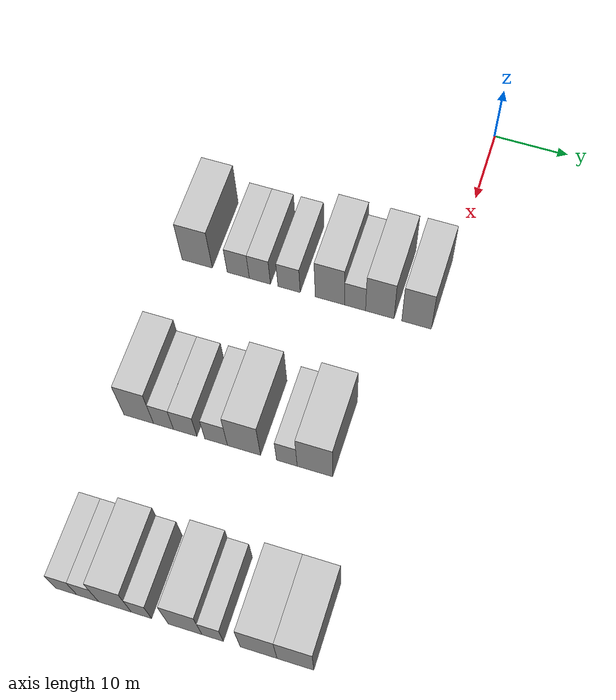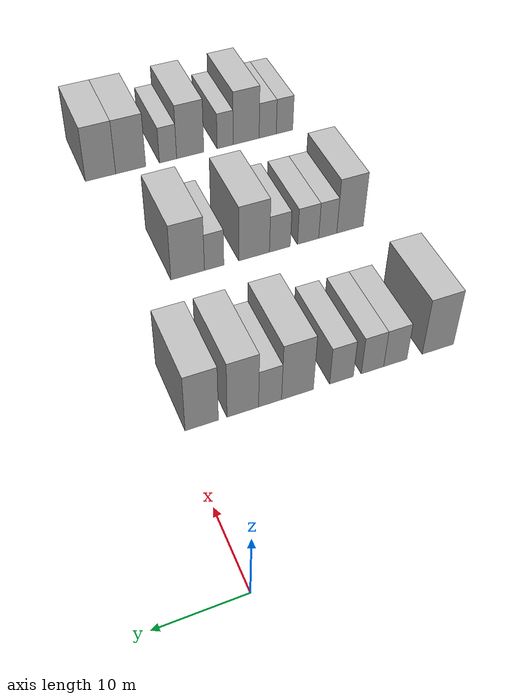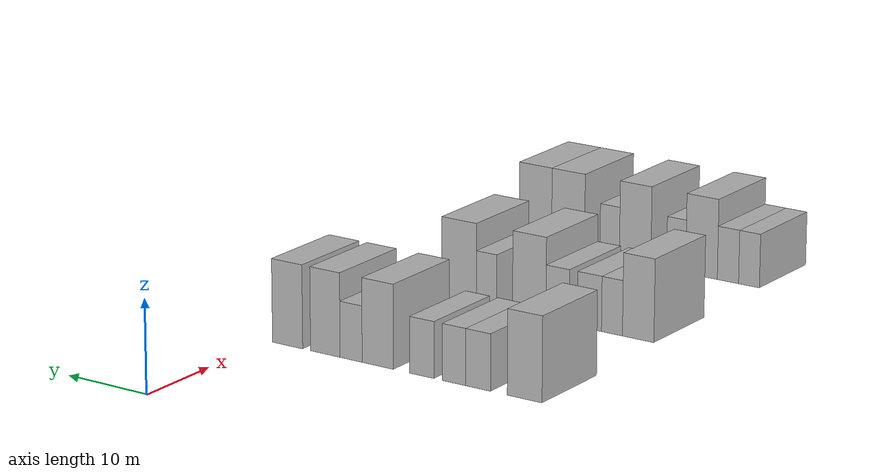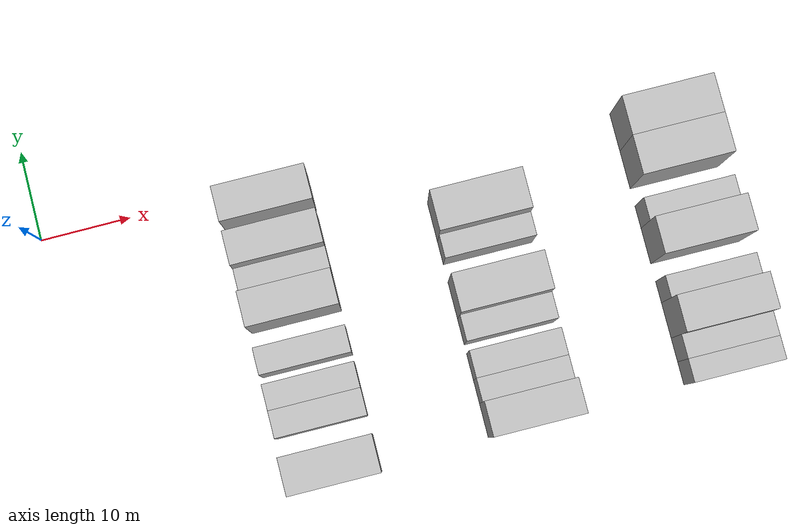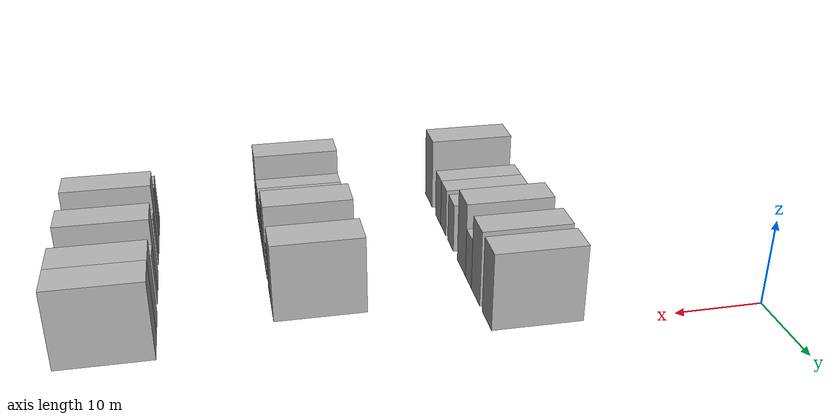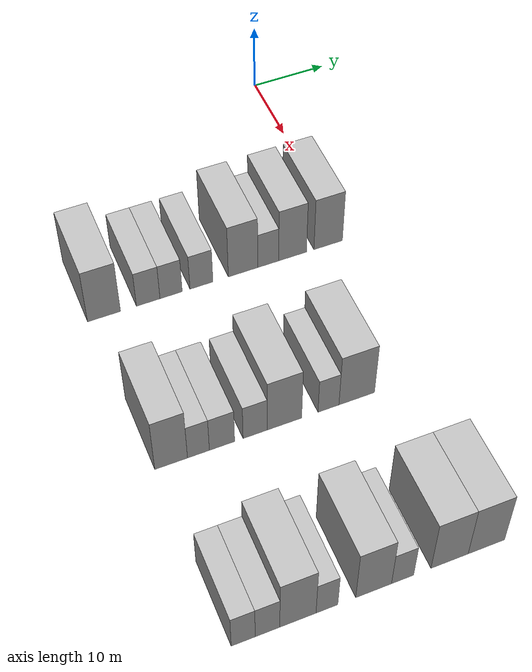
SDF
<sdf version="1.6">
 <world name="default">
  <model name="building_57">
   <static>1</static>
   <pose>25.0000 -31.4911 0 0.000000 0.000000 0.000000</pose>
   <link name="link">
    <pose>0 0 4.50 0 0 0</pose>
    <collision name="collision"><geometry><box><size>10.0000 4.1000 9.0000</size></box></geometry></collision>
    <visual name="visual">
     <cast_shadows>0</cast_shadows>
     <geometry><box><size>10.0000 4.1000 9.0000</size></box></geometry>
     <material>
      <script>
       <uri>model://HANNAS_wall/materials/scripts</uri>
       <uri>model://HANNAS_wall/materials/textures</uri>
       <name>vrc/HANNAS_wall</name>
      </script>
     </material>
    </visual>
   </link>
  </model>
  <model name="building_58">
   <static>1</static>
   <pose>25.0000 -25.9524 0 0.000000 0.000000 0.000000</pose>
   <link name="link">
    <pose>0 0 3.00 0 0 0</pose>
    <collision name="collision"><geometry><box><size>10.0000 2.9773 6.0000</size></box></geometry></collision>
    <visual name="visual">
     <cast_shadows>0</cast_shadows>
     <geometry><box><size>10.0000 2.9773 6.0000</size></box></geometry>
     <material>
      <script>
       <uri>model://HANNAS_wall/materials/scripts</uri>
       <uri>model://HANNAS_wall/materials/textures</uri>
       <name>vrc/HANNAS_wall</name>
      </script>
     </material>
    </visual>
   </link>
  </model>
  <model name="building_59">
   <static>1</static>
   <pose>25.0000 -23.0482 0 0.000000 0.000000 0.000000</pose>
   <link name="link">
    <pose>0 0 3.00 0 0 0</pose>
    <collision name="collision"><geometry><box><size>10.0000 2.8312 6.0000</size></box></geometry></collision>
    <visual name="visual">
     <cast_shadows>0</cast_shadows>
     <geometry><box><size>10.0000 2.8312 6.0000</size></box></geometry>
     <material>
      <script>
       <uri>model://HANNAS_wall/materials/scripts</uri>
       <uri>model://HANNAS_wall/materials/textures</uri>
       <name>vrc/HANNAS_wall</name>
      </script>
     </material>
    </visual>
   </link>
  </model>
  <model name="building_60">
   <static>1</static>
   <pose>25.0000 -19.1541 0 0.000000 0.000000 0.000000</pose>
   <link name="link">
    <pose>0 0 3.00 0 0 0</pose>
    <collision name="collision"><geometry><box><size>10.0000 2.9568 6.0000</size></box></geometry></collision>
    <visual name="visual">
     <cast_shadows>0</cast_shadows>
     <geometry><box><size>10.0000 2.9568 6.0000</size></box></geometry>
     <material>
      <script>
       <uri>model://HANNAS_wall/materials/scripts</uri>
       <uri>model://HANNAS_wall/materials/textures</uri>
       <name>vrc/HANNAS_wall</name>
      </script>
     </material>
    </visual>
   </link>
  </model>
  <model name="building_61">
   <static>1</static>
   <pose>25.0000 -13.7435 0 0.000000 0.000000 0.000000</pose>
   <link name="link">
    <pose>0 0 4.50 0 0 0</pose>
    <collision name="collision"><geometry><box><size>10.0000 3.8644 9.0000</size></box></geometry></collision>
    <visual name="visual">
     <cast_shadows>0</cast_shadows>
     <geometry><box><size>10.0000 3.8644 9.0000</size></box></geometry>
     <material>
      <script>
       <uri>model://HANNAS_wall/materials/scripts</uri>
       <uri>model://HANNAS_wall/materials/textures</uri>
       <name>vrc/HANNAS_wall</name>
      </script>
     </material>
    </visual>
   </link>
  </model>
  <model name="building_62">
   <static>1</static>
   <pose>25.0000 -10.4363 0 0.000000 0.000000 0.000000</pose>
   <link name="link">
    <pose>0 0 3.00 0 0 0</pose>
    <collision name="collision"><geometry><box><size>10.0000 2.7500 6.0000</size></box></geometry></collision>
    <visual name="visual">
     <cast_shadows>0</cast_shadows>
     <geometry><box><size>10.0000 2.7500 6.0000</size></box></geometry>
     <material>
      <script>
       <uri>model://HANNAS_wall/materials/scripts</uri>
       <uri>model://HANNAS_wall/materials/textures</uri>
       <name>vrc/HANNAS_wall</name>
      </script>
     </material>
    </visual>
   </link>
  </model>
  <model name="building_63">
   <static>1</static>
   <pose>25.0000 -7.2013 0 0.000000 0.000000 0.000000</pose>
   <link name="link">
    <pose>0 0 4.50 0 0 0</pose>
    <collision name="collision"><geometry><box><size>10.0000 3.7201 9.0000</size></box></geometry></collision>
    <visual name="visual">
     <cast_shadows>0</cast_shadows>
     <geometry><box><size>10.0000 3.7201 9.0000</size></box></geometry>
     <material>
      <script>
       <uri>model://HANNAS_wall/materials/scripts</uri>
       <uri>model://HANNAS_wall/materials/textures</uri>
       <name>vrc/HANNAS_wall</name>
      </script>
     </material>
    </visual>
   </link>
  </model>
  <model name="building_64">
   <static>1</static>
   <pose>25.0000 -2.4187 0 0.000000 0.000000 0.000000</pose>
   <link name="link">
    <pose>0 0 4.50 0 0 0</pose>
    <collision name="collision"><geometry><box><size>10.0000 3.8450 9.0000</size></box></geometry></collision>
    <visual name="visual">
     <cast_shadows>0</cast_shadows>
     <geometry><box><size>10.0000 3.8450 9.0000</size></box></geometry>
     <material>
      <script>
       <uri>model://HANNAS_wall/materials/scripts</uri>
       <uri>model://HANNAS_wall/materials/textures</uri>
       <name>vrc/HANNAS_wall</name>
      </script>
     </material>
    </visual>
   </link>
  </model>
  <model name="building_174">
   <static>1</static>
   <pose>47.0000 -30.9942 0 0.000000 0.000000 0.000000</pose>
   <link name="link">
    <pose>0 0 4.50 0 0 0</pose>
    <collision name="collision"><geometry><box><size>10.0000 3.8041 9.0000</size></box></geometry></collision>
    <visual name="visual">
     <cast_shadows>0</cast_shadows>
     <geometry><box><size>10.0000 3.8041 9.0000</size></box></geometry>
     <material>
      <script>
       <uri>model://HANNAS_wall/materials/scripts</uri>
       <uri>model://HANNAS_wall/materials/textures</uri>
       <name>vrc/HANNAS_wall</name>
      </script>
     </material>
    </visual>
   </link>
  </model>
  <model name="building_175">
   <static>1</static>
   <pose>47.0000 -27.8100 0 0.000000 0.000000 0.000000</pose>
   <link name="link">
    <pose>0 0 3.00 0 0 0</pose>
    <collision name="collision"><geometry><box><size>10.0000 2.5643 6.0000</size></box></geometry></collision>
    <visual name="visual">
     <cast_shadows>0</cast_shadows>
     <geometry><box><size>10.0000 2.5643 6.0000</size></box></geometry>
     <material>
      <script>
       <uri>model://HANNAS_wall/materials/scripts</uri>
       <uri>model://HANNAS_wall/materials/textures</uri>
       <name>vrc/HANNAS_wall</name>
      </script>
     </material>
    </visual>
   </link>
  </model>
  <model name="building_176">
   <static>1</static>
   <pose>47.0000 -25.0365 0 0.000000 0.000000 0.000000</pose>
   <link name="link">
    <pose>0 0 3.00 0 0 0</pose>
    <collision name="collision"><geometry><box><size>10.0000 2.9825 6.0000</size></box></geometry></collision>
    <visual name="visual">
     <cast_shadows>0</cast_shadows>
     <geometry><box><size>10.0000 2.9825 6.0000</size></box></geometry>
     <material>
      <script>
       <uri>model://HANNAS_wall/materials/scripts</uri>
       <uri>model://HANNAS_wall/materials/textures</uri>
       <name>vrc/HANNAS_wall</name>
      </script>
     </material>
    </visual>
   </link>
  </model>
  <model name="building_177">
   <static>1</static>
   <pose>47.0000 -21.1062 0 0.000000 0.000000 0.000000</pose>
   <link name="link">
    <pose>0 0 3.00 0 0 0</pose>
    <collision name="collision"><geometry><box><size>10.0000 2.8782 6.0000</size></box></geometry></collision>
    <visual name="visual">
     <cast_shadows>0</cast_shadows>
     <geometry><box><size>10.0000 2.8782 6.0000</size></box></geometry>
     <material>
      <script>
       <uri>model://HANNAS_wall/materials/scripts</uri>
       <uri>model://HANNAS_wall/materials/textures</uri>
       <name>vrc/HANNAS_wall</name>
      </script>
     </material>
    </visual>
   </link>
  </model>
  <model name="building_178">
   <static>1</static>
   <pose>47.0000 -17.5752 0 0.000000 0.000000 0.000000</pose>
   <link name="link">
    <pose>0 0 4.50 0 0 0</pose>
    <collision name="collision"><geometry><box><size>10.0000 4.1839 9.0000</size></box></geometry></collision>
    <visual name="visual">
     <cast_shadows>0</cast_shadows>
     <geometry><box><size>10.0000 4.1839 9.0000</size></box></geometry>
     <material>
      <script>
       <uri>model://HANNAS_wall/materials/scripts</uri>
       <uri>model://HANNAS_wall/materials/textures</uri>
       <name>vrc/HANNAS_wall</name>
      </script>
     </material>
    </visual>
   </link>
  </model>
  <model name="building_179">
   <static>1</static>
   <pose>47.0000 -12.1935 0 0.000000 0.000000 0.000000</pose>
   <link name="link">
    <pose>0 0 3.00 0 0 0</pose>
    <collision name="collision"><geometry><box><size>10.0000 2.5794 6.0000</size></box></geometry></collision>
    <visual name="visual">
     <cast_shadows>0</cast_shadows>
     <geometry><box><size>10.0000 2.5794 6.0000</size></box></geometry>
     <material>
      <script>
       <uri>model://HANNAS_wall/materials/scripts</uri>
       <uri>model://HANNAS_wall/materials/textures</uri>
       <name>vrc/HANNAS_wall</name>
      </script>
     </material>
    </visual>
   </link>
  </model>
  <model name="building_180">
   <static>1</static>
   <pose>47.0000 -8.6944 0 0.000000 0.000000 0.000000</pose>
   <link name="link">
    <pose>0 0 4.50 0 0 0</pose>
    <collision name="collision"><geometry><box><size>10.0000 4.4188 9.0000</size></box></geometry></collision>
    <visual name="visual">
     <cast_shadows>0</cast_shadows>
     <geometry><box><size>10.0000 4.4188 9.0000</size></box></geometry>
     <material>
      <script>
       <uri>model://HANNAS_wall/materials/scripts</uri>
       <uri>model://HANNAS_wall/materials/textures</uri>
       <name>vrc/HANNAS_wall</name>
      </script>
     </material>
    </visual>
   </link>
  </model>
  <model name="building_296">
   <static>1</static>
   <pose>69.0000 -31.3182 0 0.000000 0.000000 0.000000</pose>
   <link name="link">
    <pose>0 0 3.00 0 0 0</pose>
    <collision name="collision"><geometry><box><size>10.0000 2.5780 6.0000</size></box></geometry></collision>
    <visual name="visual">
     <cast_shadows>0</cast_shadows>
     <geometry><box><size>10.0000 2.5780 6.0000</size></box></geometry>
     <material>
      <script>
       <uri>model://HANNAS_wall/materials/scripts</uri>
       <uri>model://HANNAS_wall/materials/textures</uri>
       <name>vrc/HANNAS_wall</name>
      </script>
     </material>
    </visual>
   </link>
  </model>
  <model name="building_297">
   <static>1</static>
   <pose>69.0000 -28.7033 0 0.000000 0.000000 0.000000</pose>
   <link name="link">
    <pose>0 0 3.00 0 0 0</pose>
    <collision name="collision"><geometry><box><size>10.0000 2.6519 6.0000</size></box></geometry></collision>
    <visual name="visual">
     <cast_shadows>0</cast_shadows>
     <geometry><box><size>10.0000 2.6519 6.0000</size></box></geometry>
     <material>
      <script>
       <uri>model://HANNAS_wall/materials/scripts</uri>
       <uri>model://HANNAS_wall/materials/textures</uri>
       <name>vrc/HANNAS_wall</name>
      </script>
     </material>
    </visual>
   </link>
  </model>
  <model name="building_298">
   <static>1</static>
   <pose>69.0000 -25.3860 0 0.000000 0.000000 0.000000</pose>
   <link name="link">
    <pose>0 0 4.50 0 0 0</pose>
    <collision name="collision"><geometry><box><size>10.0000 3.9826 9.0000</size></box></geometry></collision>
    <visual name="visual">
     <cast_shadows>0</cast_shadows>
     <geometry><box><size>10.0000 3.9826 9.0000</size></box></geometry>
     <material>
      <script>
       <uri>model://HANNAS_wall/materials/scripts</uri>
       <uri>model://HANNAS_wall/materials/textures</uri>
       <name>vrc/HANNAS_wall</name>
      </script>
     </material>
    </visual>
   </link>
  </model>
  <model name="building_299">
   <static>1</static>
   <pose>69.0000 -22.1855 0 0.000000 0.000000 0.000000</pose>
   <link name="link">
    <pose>0 0 3.00 0 0 0</pose>
    <collision name="collision"><geometry><box><size>10.0000 2.4184 6.0000</size></box></geometry></collision>
    <visual name="visual">
     <cast_shadows>0</cast_shadows>
     <geometry><box><size>10.0000 2.4184 6.0000</size></box></geometry>
     <material>
      <script>
       <uri>model://HANNAS_wall/materials/scripts</uri>
       <uri>model://HANNAS_wall/materials/textures</uri>
       <name>vrc/HANNAS_wall</name>
      </script>
     </material>
    </visual>
   </link>
  </model>
  <model name="building_300">
   <static>1</static>
   <pose>69.0000 -16.9565 0 0.000000 0.000000 0.000000</pose>
   <link name="link">
    <pose>0 0 4.50 0 0 0</pose>
    <collision name="collision"><geometry><box><size>10.0000 4.0397 9.0000</size></box></geometry></collision>
    <visual name="visual">
     <cast_shadows>0</cast_shadows>
     <geometry><box><size>10.0000 4.0397 9.0000</size></box></geometry>
     <material>
      <script>
       <uri>model://HANNAS_wall/materials/scripts</uri>
       <uri>model://HANNAS_wall/materials/textures</uri>
       <name>vrc/HANNAS_wall</name>
      </script>
     </material>
    </visual>
   </link>
  </model>
  <model name="building_301">
   <static>1</static>
   <pose>69.0000 -13.6727 0 0.000000 0.000000 0.000000</pose>
   <link name="link">
    <pose>0 0 3.00 0 0 0</pose>
    <collision name="collision"><geometry><box><size>10.0000 2.5279 6.0000</size></box></geometry></collision>
    <visual name="visual">
     <cast_shadows>0</cast_shadows>
     <geometry><box><size>10.0000 2.5279 6.0000</size></box></geometry>
     <material>
      <script>
       <uri>model://HANNAS_wall/materials/scripts</uri>
       <uri>model://HANNAS_wall/materials/textures</uri>
       <name>vrc/HANNAS_wall</name>
      </script>
     </material>
    </visual>
   </link>
  </model>
  <model name="building_302">
   <static>1</static>
   <pose>69.0000 -8.2494 0 0.000000 0.000000 0.000000</pose>
   <link name="link">
    <pose>0 0 4.50 0 0 0</pose>
    <collision name="collision"><geometry><box><size>10.0000 4.3187 9.0000</size></box></geometry></collision>
    <visual name="visual">
     <cast_shadows>0</cast_shadows>
     <geometry><box><size>10.0000 4.3187 9.0000</size></box></geometry>
     <material>
      <script>
       <uri>model://HANNAS_wall/materials/scripts</uri>
       <uri>model://HANNAS_wall/materials/textures</uri>
       <name>vrc/HANNAS_wall</name>
      </script>
     </material>
    </visual>
   </link>
  </model>
  <model name="building_303">
   <static>1</static>
   <pose>69.0000 -3.9411 0 0.000000 0.000000 0.000000</pose>
   <link name="link">
    <pose>0 0 4.50 0 0 0</pose>
    <collision name="collision"><geometry><box><size>10.0000 4.2979 9.0000</size></box></geometry></collision>
    <visual name="visual">
     <cast_shadows>0</cast_shadows>
     <geometry><box><size>10.0000 4.2979 9.0000</size></box></geometry>
     <material>
      <script>
       <uri>model://HANNAS_wall/materials/scripts</uri>
       <uri>model://HANNAS_wall/materials/textures</uri>
       <name>vrc/HANNAS_wall</name>
      </script>
     </material>
    </visual>
   </link>
  </model>
 </world>
</sdf>
